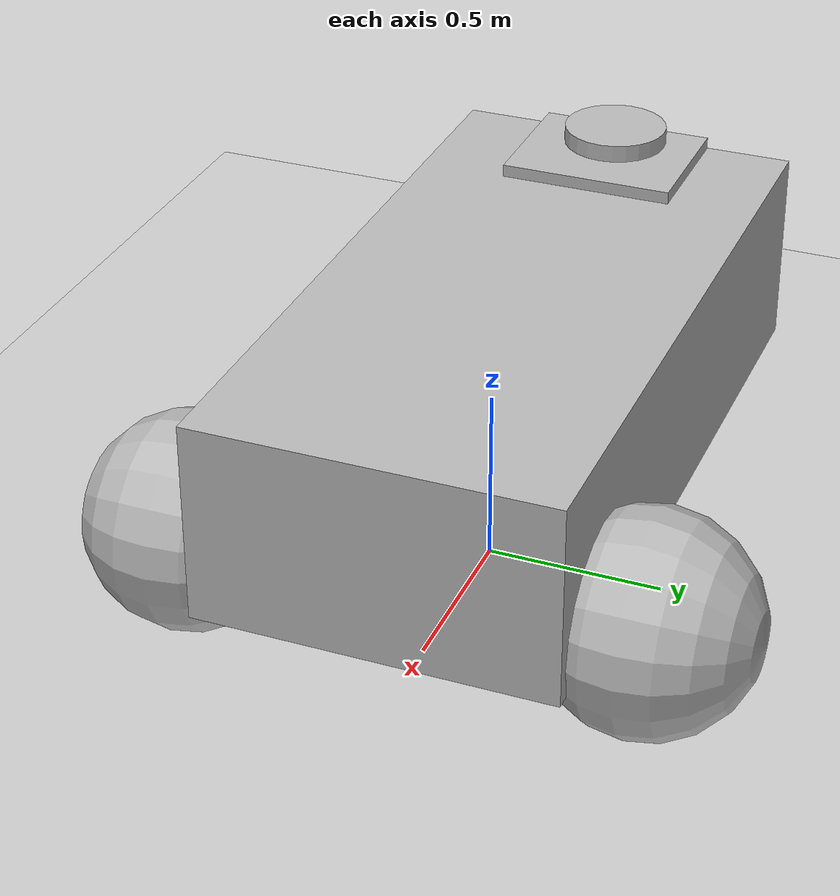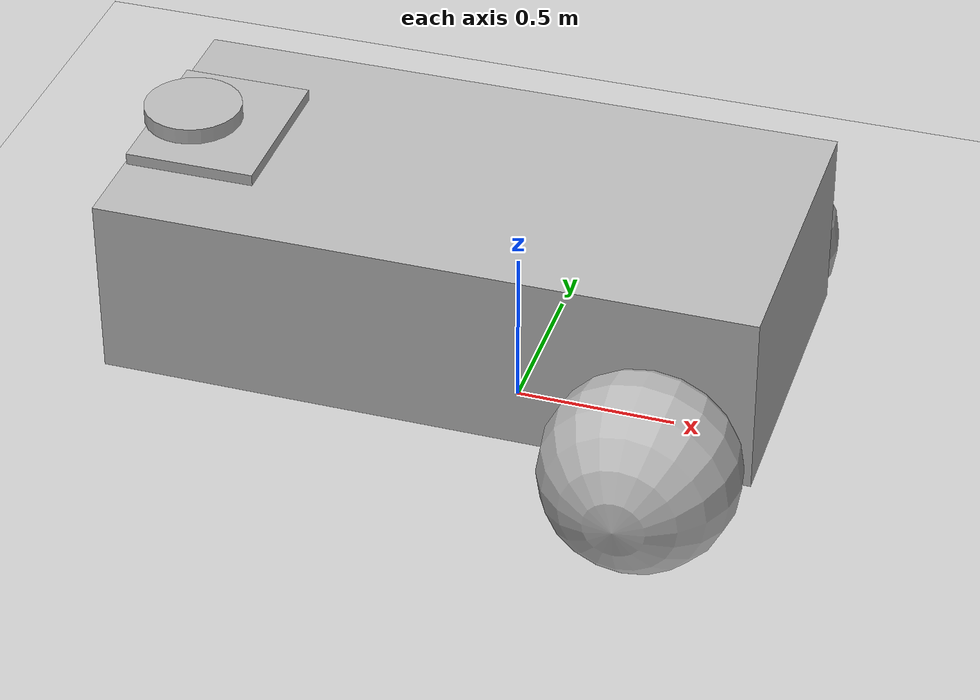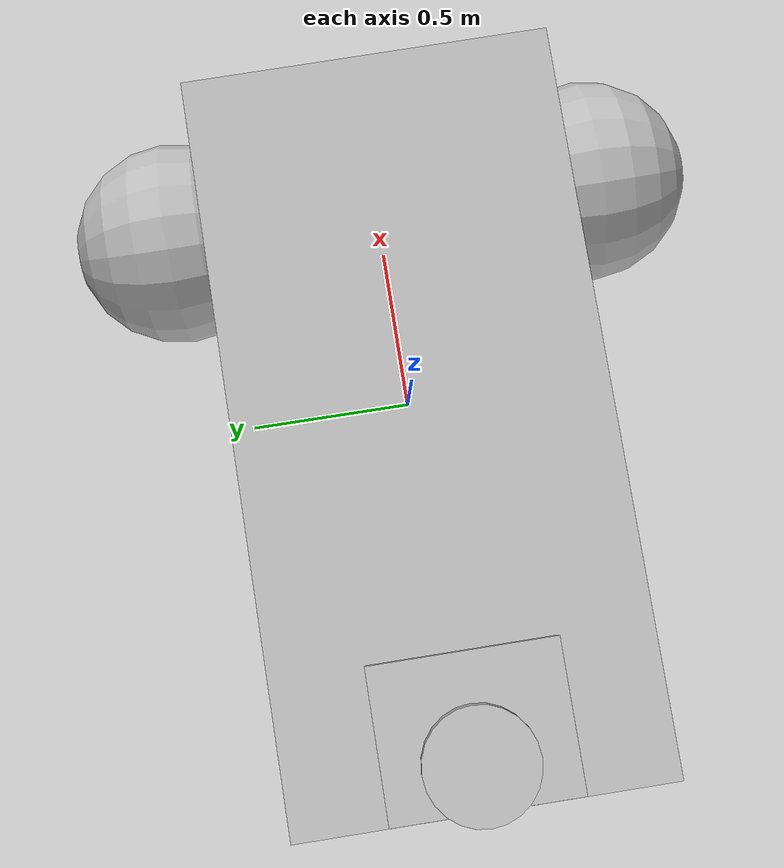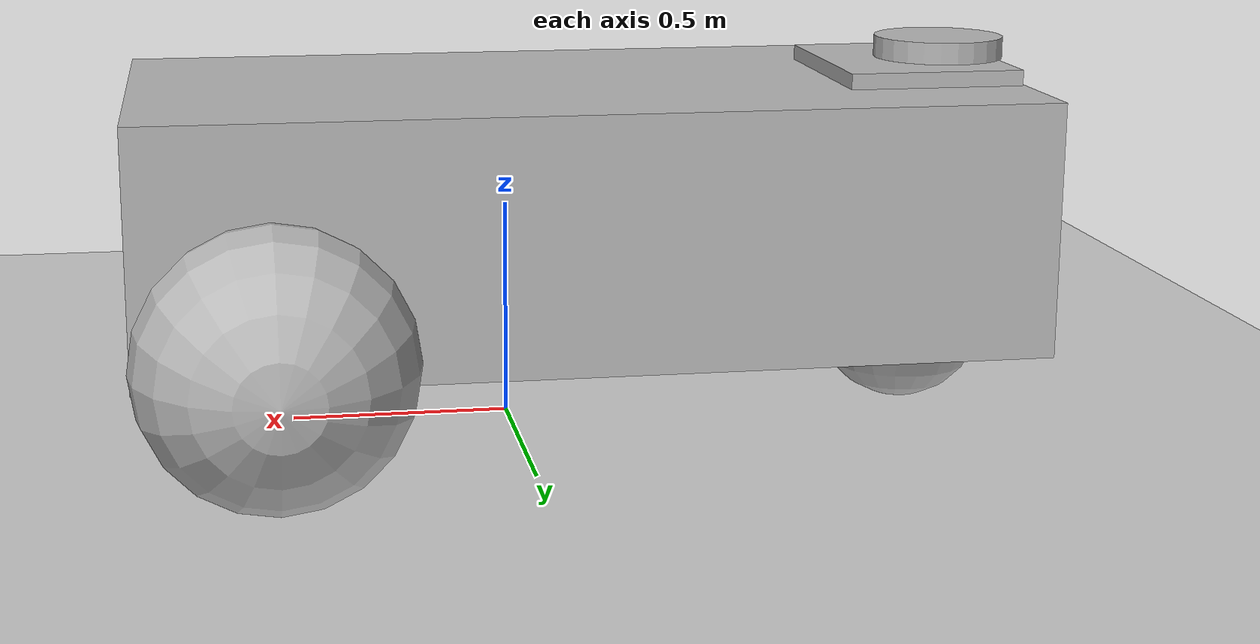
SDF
<?xml version="1.0"?>
<sdf version="1.6">
  <world name="default">

    <include>
      <uri>model://ground_plane</uri>
    </include>

    <include>
      <uri>model://sun</uri>
    </include>

    <model name='vehicle'>
      <pose>0 0 0.325 0 -0 0</pose>

      <link name='chassis'>
        <pose>-0.151427 -0 0.175 0 -0 0</pose>
        <inertial>
          <mass>1.14395</mass>
          <inertia>
            <ixx>0.126164</ixx>
            <ixy>0</ixy>
            <ixz>0</ixz>
            <iyy>0.416519</iyy>
            <iyz>0</iyz>
            <izz>0.481014</izz>
          </inertia>
        </inertial>
        <visual name='visual'>
          <geometry>
            <box>
              <size>2.01142 1 0.568726</size>
            </box>
          </geometry>
        </visual>
        <collision name='collision'>
          <geometry>
            <box>
              <size>2.01142 1 0.568726</size>
            </box>
          </geometry>
        </collision>
      </link>

      <link name='left_wheel'>
        <pose>0.554283 0.625029 -0.025 -1.5707 0 0</pose>
        <inertial>
          <mass>2</mass>
          <inertia>
            <ixx>0.145833</ixx>
            <ixy>0</ixy>
            <ixz>0</ixz>
            <iyy>0.145833</iyy>
            <iyz>0</iyz>
            <izz>0.125</izz>
          </inertia>
        </inertial>
        <visual name='visual'>
          <geometry>
            <sphere>
              <radius>0.3</radius>
            </sphere>
          </geometry>
        </visual>
        <collision name='collision'>
          <geometry>
            <sphere>
              <radius>0.3</radius>
            </sphere>
          </geometry>
          <surface>
            <friction>
              <ode>
                <mu>1</mu>
                <mu2>1</mu2>
                <slip1>0</slip1>
                <slip2>0</slip2>
              </ode>
            </friction>
            <contact>
              <ode>
                <soft_cfm>0</soft_cfm>
                <soft_erp>0.2</soft_erp>
                <kp>1e+13</kp>
                <kd>1</kd>
                <max_vel>0.01</max_vel>
                <min_depth>0.01</min_depth>
              </ode>
            </contact>
          </surface>
        </collision>
      </link>

      <link name='right_wheel'>
        <pose>0.554282 -0.625029 -0.025 -1.5707 0 0</pose>
        <inertial>
          <mass>2</mass>
          <inertia>
            <ixx>0.145833</ixx>
            <ixy>0</ixy>
            <ixz>0</ixz>
            <iyy>0.145833</iyy>
            <iyz>0</iyz>
            <izz>0.125</izz>
          </inertia>
        </inertial>
        <visual name='visual'>
          <geometry>
            <sphere>
              <radius>0.3</radius>
            </sphere>
          </geometry>
        </visual>
        <collision name='collision'>
          <geometry>
            <sphere>
              <radius>0.3</radius>
            </sphere>
          </geometry>
          <surface>
            <friction>
              <ode>
                <mu>1</mu>
                <mu2>1</mu2>
                <slip1>0</slip1>
                <slip2>0</slip2>
              </ode>
            </friction>
            <contact>
              <ode>
                <soft_cfm>0</soft_cfm>
                <soft_erp>0.2</soft_erp>
                <kp>1e+13</kp>
                <kd>1</kd>
                <max_vel>0.01</max_vel>
                <min_depth>0.01</min_depth>
              </ode>
            </contact>
          </surface>
        </collision>
      </link>

      <link name='caster'>
        <pose>-0.957138 -0 -0.125 0 -0 0</pose>
        <inertial>
          <mass>1</mass>
          <inertia>
            <ixx>0.1</ixx>
            <ixy>0</ixy>
            <ixz>0</ixz>
            <iyy>0.1</iyy>
            <iyz>0</iyz>
            <izz>0.1</izz>
          </inertia>
        </inertial>
        <visual name='visual'>
          <geometry>
            <sphere>
              <radius>0.2</radius>
            </sphere>
          </geometry>
        </visual>
        <collision name='collision'>
          <geometry>
            <sphere>
              <radius>0.2</radius>
            </sphere>
          </geometry>
        </collision>
      </link>

      <joint name='left_wheel_joint' type='revolute'>
        <parent>chassis</parent>
        <child>left_wheel</child>
        <axis>
          <xyz>0 0 1</xyz>
          <limit>
            <lower>-1.79769e+308</lower>
            <upper>1.79769e+308</upper>
          </limit>
        </axis>
      </joint>

      <joint name='right_wheel_joint' type='revolute'>
        <parent>chassis</parent>
        <child>right_wheel</child>
        <axis>
          <xyz>0 0 1</xyz>
          <limit>
            <lower>-1.79769e+308</lower>
            <upper>1.79769e+308</upper>
          </limit>
        </axis>
      </joint>

      <joint name='caster_wheel' type='ball'>
        <parent>chassis</parent>
        <child>caster</child>
      </joint>

<!-- Camera -->
<link name='camera'>
    <pose>-1.03 -0 0.52 0 3.14 0</pose>
        <inertial>
          <mass>0.2</mass>
          <inertia>
            <ixx>0.1</ixx>
            <ixy>0</ixy>
            <ixz>0</ixz>
            <iyy>0.1</iyy>
            <iyz>0</iyz>
            <izz>0.1</izz>
          </inertia>
        </inertial>
        <visual name='visual'>
          <geometry>
            <cylinder >
              <radius>0.15</radius>
              <length>0.05</length>
            </cylinder>
          </geometry>
        </visual>
        <collision name='collision'>
          <geometry>
            <cylinder >
              <radius>0.15</radius>
              <length>0.05</length>
            </cylinder>
          </geometry>
        </collision>

<!-- Adding Sensor -->
<sensor name="camera" type="camera">
        <always_on>true</always_on>
        <visualize>true</visualize>
        <update_rate>30</update_rate>
        <camera name="picam">
          <horizontal_fov>1.085595</horizontal_fov>
          <image>
              <width>640</width>
              <height>480</height>
              <format>R8G8B8</format>
          </image>
          <clip>
              <near>0.03</near>
              <far>100</far>
          </clip>
          <noise>
            <type>gaussian</type>
            <mean>0.0</mean>
            <stddev>0.007</stddev>
          </noise>
        </camera>
          <plugin name="camera_driver" filename="libgazebo_ros_camera.so">
            <ros>
            </ros>
          </plugin>
      </sensor>

      </link>

      <joint name='camera_joint' type='fixed'>
        <parent>chassis</parent>
        <child>camera</child>
        <axis>
          <xyz>0 0 1</xyz>
        </axis>
      </joint>

      <!-- Lidar -->
      <link name='lidar'>
    <pose>-0.95 0 0.47 0 0 0</pose>
        <inertial>
          <mass>0.2</mass>
          <inertia>
            <ixx>0.1</ixx>
            <ixy>0</ixy>
            <ixz>0</ixz>
            <iyy>0.1</iyy>
            <iyz>0</iyz>
            <izz>0.1</izz>
          </inertia>
        </inertial>
        <visual name='visual'>
          <geometry>
            <box>
              <size>0.4 0.5 0.05</size>
            </box>
          </geometry>
        </visual>
        <collision name='collision'>
          <geometry>
            <box>
              <size>0.2 0.5 0.05</size>
            </box>
          </geometry>
        </collision>

<!-- Lidar Plugin  -->
<sensor name="Lidar" type="ray">
        <always_on>true</always_on>
        <visualize>true</visualize>
        <pose>-0.2 0 0 0 0 1.57</pose>
        <update_rate>5</update_rate>
        <ray>
          <scan>
            <horizontal>
              <samples>360</samples>
              <resolution>1.000000</resolution>
              <min_angle>0.000000</min_angle>
              <max_angle>3.140000</max_angle>
            </horizontal>
          </scan>
          <range>
            <min>0.120000</min>
            <max>3.5</max>
            <resolution>0.015000</resolution>
          </range>
          <noise>
            <type>gaussian</type>
            <mean>0.0</mean>
            <stddev>0.01</stddev>
          </noise>
        </ray>
        <plugin name="laserscan" filename="libgazebo_ros_ray_sensor.so">
          <output_type>sensor_msgs/LaserScan</output_type>
          <frame_name>laser_scanner</frame_name>
        </plugin>
      </sensor>

      </link>

      <joint name='lidar_joint' type='fixed'>
        <parent>chassis</parent>
        <child>lidar</child>
        <axis>
          <xyz>0 0 1</xyz>
        </axis>
      </joint>

<!-- DIFFERENTIAL DRIVE PLUGIN -->
      <plugin name='diff_drive' filename='libgazebo_ros_diff_drive.so'>

        <!-- wheels -->
        <left_joint>left_wheel_joint</left_joint>
        <right_joint>right_wheel_joint</right_joint>

        <!-- kinematics -->
        <wheel_separation>1.25</wheel_separation>
        <wheel_diameter>0.6</wheel_diameter>

        <!-- limits -->
        <max_wheel_torque>20</max_wheel_torque>
        <max_wheel_acceleration>1.0</max_wheel_acceleration>

        <!-- output -->
        <publish_odom>true</publish_odom>
        <publish_odom_tf>true</publish_odom_tf>
        <publish_wheel_tf>true</publish_wheel_tf>

        <odometry_frame>odom</odometry_frame>
        <robot_base_frame>chassis</robot_base_frame>

      </plugin>

    </model>

  </world>
</sdf>
